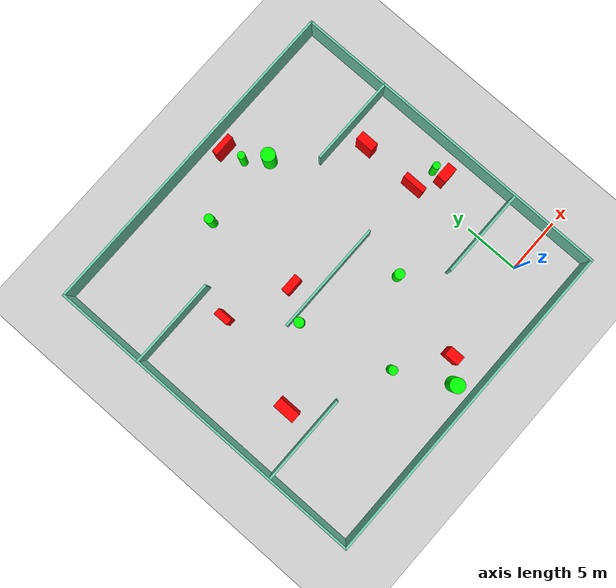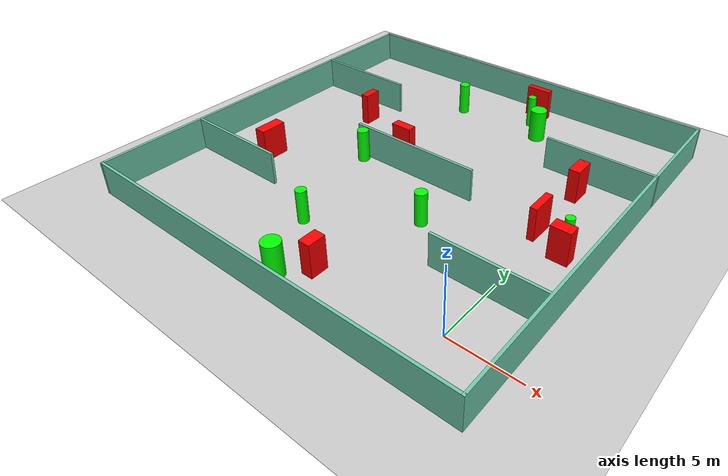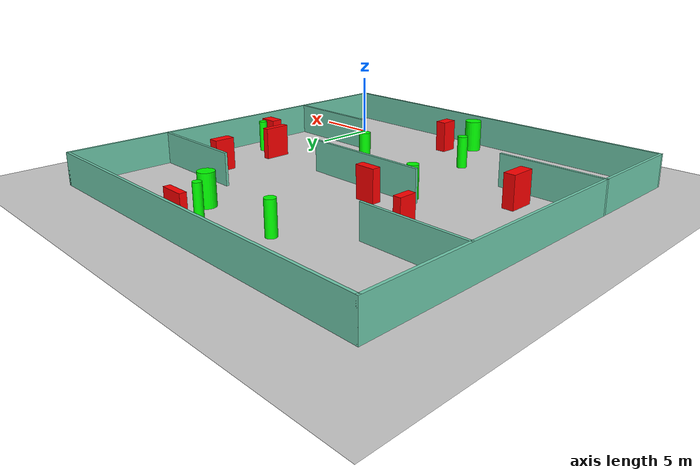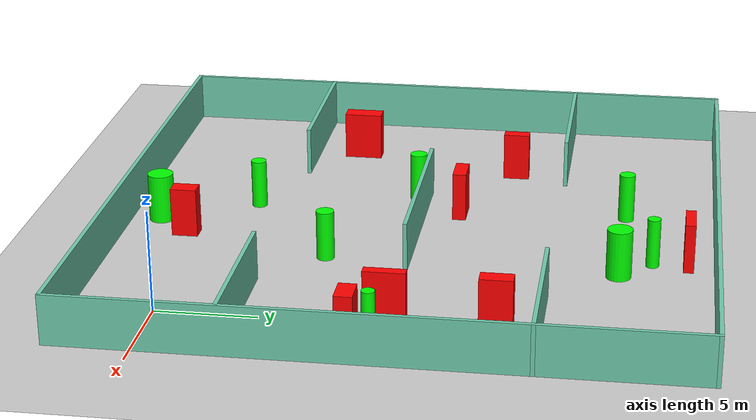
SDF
<sdf version="1.7">
 <world name="default">
  <light name="sun" type="directional">
   <pose>0 0 10 0 -0 0</pose>
   <diffuse>0.8 0.8 0.8 1</diffuse>
   <specular>0.2 0.2 0.2 1</specular>
   <attenuation>
    <range>1000</range>
    <constant>0.9</constant>
    <linear>0.01</linear>
    <quadratic>0.001</quadratic>
   </attenuation>
   <direction>-0.5 0.1 -0.9</direction>
   <spot><inner_angle>0</inner_angle><outer_angle>0</outer_angle><falloff>0</falloff></spot>
  </light>
  <model name="ground_plane">
   <static>1</static>
   <link name="link">
    <collision name="collision">
     <geometry><plane><normal>0 0 1</normal><size>100 100</size></plane></geometry>
     <surface>
      <contact><collide_bitmask>65535</collide_bitmask></contact>
      <friction><ode><mu>100</mu><mu2>50</mu2></ode></friction>
     </surface>
    </collision>
    <visual name="visual">
     <cast_shadows>0</cast_shadows>
     <geometry><plane><normal>0 0 1</normal><size>100 100</size></plane></geometry>
     <material>
      <script><uri>file://media/materials/scripts/gazebo.material</uri><name>Gazebo/Grey</name></script>
     </material>
    </visual>
   </link>
  </model>
  <gravity>0 0 -9.8</gravity>
  <magnetic_field>6e-06 2.3e-05 -4.2e-05</magnetic_field>
  <atmosphere type="adiabatic"/>
  <physics type="ode">
   <max_step_size>0.001</max_step_size>
   <real_time_factor>1</real_time_factor>
   <real_time_update_rate>1000</real_time_update_rate>
  </physics>
  <scene><ambient>0.4 0.4 0.4 1</ambient><background>0.7 0.7 0.7 1</background><shadows>1</shadows></scene>
  <spherical_coordinates>
   <surface_model>EARTH_WGS84</surface_model>
   <latitude_deg>0</latitude_deg>
   <longitude_deg>0</longitude_deg>
   <elevation>0</elevation>
   <heading_deg>0</heading_deg>
  </spherical_coordinates>
  <model name="my_base_walls">
   <link name="Wall_10">
    <collision name="Wall_10_Collision">
     <geometry><box><size>8.2 0.2 2.5</size></box></geometry>
     <pose>0 0 1.25 0 -0 0</pose>
    </collision>
    <visual name="Wall_10_Visual">
     <pose>0 0 1.25 0 -0 0</pose>
     <geometry><box><size>8.2 0.2 2.5</size></box></geometry>
     <material>
      <script><uri>file://media/materials/scripts/gazebo.material</uri><name>Gazebo/Grey</name></script>
      <ambient>0.435294 0.796078 0.67451 1</ambient>
     </material>
     <meta><layer>0</layer></meta>
    </visual>
    <pose>-11 -7 0 0 -0 0</pose>
   </link>
   <link name="Wall_12">
    <collision name="Wall_12_Collision">
     <geometry><box><size>8.2 0.2 2.5</size></box></geometry>
     <pose>0 0 1.25 0 -0 0</pose>
    </collision>
    <visual name="Wall_12_Visual">
     <pose>0 0 1.25 0 -0 0</pose>
     <geometry><box><size>8.2 0.2 2.5</size></box></geometry>
     <material>
      <script><uri>file://media/materials/scripts/gazebo.material</uri><name>Gazebo/Grey</name></script>
      <ambient>0.435294 0.796078 0.67451 1</ambient>
     </material>
     <meta><layer>0</layer></meta>
    </visual>
    <pose>-11 7 0 0 -0 0</pose>
   </link>
   <link name="Wall_14">
    <collision name="Wall_14_Collision">
     <geometry><box><size>8.2 0.2 2.5</size></box></geometry>
     <pose>0 0 1.25 0 -0 0</pose>
    </collision>
    <visual name="Wall_14_Visual">
     <pose>0 0 1.25 0 -0 0</pose>
     <geometry><box><size>8.2 0.2 2.5</size></box></geometry>
     <material>
      <script><uri>file://media/materials/scripts/gazebo.material</uri><name>Gazebo/Grey</name></script>
      <ambient>0.435294 0.796078 0.67451 1</ambient>
     </material>
     <meta><layer>0</layer></meta>
    </visual>
    <pose>11 7 0 0 -0 3.14159</pose>
   </link>
   <link name="Wall_16">
    <collision name="Wall_16_Collision">
     <geometry><box><size>10.2 0.2 2.5</size></box></geometry>
     <pose>0 0 1.25 0 -0 0</pose>
    </collision>
    <visual name="Wall_16_Visual">
     <pose>0 0 1.25 0 -0 0</pose>
     <geometry><box><size>10.2 0.2 2.5</size></box></geometry>
     <material>
      <script><uri>file://media/materials/scripts/gazebo.material</uri><name>Gazebo/Grey</name></script>
      <ambient>0.435294 0.796078 0.67451 1</ambient>
     </material>
     <meta><layer>0</layer></meta>
    </visual>
    <pose>0 0 0 0 -0 3.14159</pose>
   </link>
   <link name="Wall_2">
    <collision name="Wall_2_Collision">
     <geometry><box><size>30.2 0.2 2.5</size></box></geometry>
     <pose>0 0 1.25 0 -0 0</pose>
    </collision>
    <visual name="Wall_2_Visual">
     <pose>0 0 1.25 0 -0 0</pose>
     <geometry><box><size>30.2 0.2 2.5</size></box></geometry>
     <material>
      <script><uri>file://media/materials/scripts/gazebo.material</uri><name>Gazebo/Grey</name></script>
      <ambient>0.435294 0.796078 0.67451 1</ambient>
     </material>
     <meta><layer>0</layer></meta>
    </visual>
    <pose>0 -15 0 0 -0 3.14159</pose>
   </link>
   <link name="Wall_3">
    <collision name="Wall_3_Collision">
     <geometry><box><size>30.2 0.2 2.5</size></box></geometry>
     <pose>0 0 1.25 0 -0 0</pose>
    </collision>
    <visual name="Wall_3_Visual">
     <pose>0 0 1.25 0 -0 0</pose>
     <geometry><box><size>30.2 0.2 2.5</size></box></geometry>
     <material>
      <script><uri>file://media/materials/scripts/gazebo.material</uri><name>Gazebo/Grey</name></script>
      <ambient>0.435294 0.796078 0.67451 1</ambient>
     </material>
     <meta><layer>0</layer></meta>
    </visual>
    <pose>-15 0 0 0 -0 1.5708</pose>
   </link>
   <link name="Wall_4">
    <collision name="Wall_4_Collision">
     <geometry><box><size>30.2 0.2 2.5</size></box></geometry>
     <pose>0 0 1.25 0 -0 0</pose>
    </collision>
    <visual name="Wall_4_Visual">
     <pose>0 0 1.25 0 -0 0</pose>
     <geometry><box><size>30.2 0.2 2.5</size></box></geometry>
     <material>
      <script><uri>file://media/materials/scripts/gazebo.material</uri><name>Gazebo/Grey</name></script>
      <ambient>0.435294 0.796078 0.67451 1</ambient>
     </material>
     <meta><layer>0</layer></meta>
    </visual>
    <pose>0 15 0 0 -0 0</pose>
   </link>
   <link name="Wall_6">
    <collision name="Wall_6_Collision">
     <geometry><box><size>30.2 0.2 2.5</size></box></geometry>
     <pose>0 0 1.25 0 -0 0</pose>
    </collision>
    <visual name="Wall_6_Visual">
     <pose>0 0 1.25 0 -0 0</pose>
     <geometry><box><size>30.2 0.2 2.5</size></box></geometry>
     <material>
      <script><uri>file://media/materials/scripts/gazebo.material</uri><name>Gazebo/Grey</name></script>
      <ambient>0.435294 0.796078 0.67451 1</ambient>
     </material>
     <meta><layer>0</layer></meta>
    </visual>
    <pose>15 0 0 0 -0 1.5708</pose>
   </link>
   <link name="Wall_8">
    <collision name="Wall_8_Collision">
     <geometry><box><size>8.2 0.2 2.5</size></box></geometry>
     <pose>0 0 1.25 0 -0 0</pose>
    </collision>
    <visual name="Wall_8_Visual">
     <pose>0 0 1.25 0 -0 0</pose>
     <geometry><box><size>8.2 0.2 2.5</size></box></geometry>
     <material>
      <script><uri>file://media/materials/scripts/gazebo.material</uri><name>Gazebo/Grey</name></script>
      <ambient>0.435294 0.796078 0.67451 1</ambient>
     </material>
     <meta><layer>0</layer></meta>
    </visual>
    <pose>11 -7 0 0 -0 3.14159</pose>
   </link>
   <static>1</static>
   <pose>-11 11 0 0 -0 0</pose>
  </model>
  <model name="cylinder1">
   <static>1</static>
   <link name="link">
    <inertial>
     <mass>1</mass>
     <inertia><ixx>0.5</ixx><ixy>0</ixy><ixz>0</ixz><iyy>0.5</iyy><iyz>0</iyz><izz>1</izz></inertia>
    </inertial>
    <collision name="collision">
     <geometry><cylinder><radius>0.6205054914900434</radius><length>2.5</length></cylinder></geometry>
    </collision>
    <visual name="visual">
     <geometry><cylinder><radius>0.6205054914900434</radius><length>2.5</length></cylinder></geometry>
     <material>
      <ambient>0 1 0 1</ambient>
      <diffuse>0 1 0 1</diffuse>
      <specular>0.1 0.1 0.1 1</specular>
      <emissive>0 0 0 0</emissive>
     </material>
    </visual>
   </link>
   <pose>-6.680904764732251 21.30118466164948 1.25 0 0 0</pose>
  </model>
  <model name="cylinder2">
   <static>1</static>
   <link name="link">
    <inertial>
     <mass>1</mass>
     <inertia><ixx>0.5</ixx><ixy>0</ixy><ixz>0</ixz><iyy>0.5</iyy><iyz>0</iyz><izz>1</izz></inertia>
    </inertial>
    <collision name="collision">
     <geometry><cylinder><radius>0.32654122195376917</radius><length>2.5</length></cylinder></geometry>
    </collision>
    <visual name="visual">
     <geometry><cylinder><radius>0.32654122195376917</radius><length>2.5</length></cylinder></geometry>
     <material>
      <ambient>0 1 0 1</ambient>
      <diffuse>0 1 0 1</diffuse>
      <specular>0.1 0.1 0.1 1</specular>
      <emissive>0 0 0 0</emissive>
     </material>
    </visual>
   </link>
   <pose>-8.162706098387767 22.89473695670688 1.25 0 0 0</pose>
  </model>
  <model name="cylinder3">
   <static>1</static>
   <link name="link">
    <inertial>
     <mass>1</mass>
     <inertia><ixx>0.5</ixx><ixy>0</ixy><ixz>0</ixz><iyy>0.5</iyy><iyz>0</iyz><izz>1</izz></inertia>
    </inertial>
    <collision name="collision">
     <geometry><cylinder><radius>0.40221119003129213</radius><length>2.5</length></cylinder></geometry>
    </collision>
    <visual name="visual">
     <geometry><cylinder><radius>0.40221119003129213</radius><length>2.5</length></cylinder></geometry>
     <material>
      <ambient>0 1 0 1</ambient>
      <diffuse>0 1 0 1</diffuse>
      <specular>0.1 0.1 0.1 1</specular>
      <emissive>0 0 0 0</emissive>
     </material>
    </visual>
   </link>
   <pose>-13.752251309276843 21.406689256540965 1.25 0 0 0</pose>
  </model>
  <model name="cylinder4">
   <static>1</static>
   <link name="link">
    <inertial>
     <mass>1</mass>
     <inertia><ixx>0.5</ixx><ixy>0</ixy><ixz>0</ixz><iyy>0.5</iyy><iyz>0</iyz><izz>1</izz></inertia>
    </inertial>
    <collision name="collision">
     <geometry><cylinder><radius>0.44283006645394707</radius><length>2.5</length></cylinder></geometry>
    </collision>
    <visual name="visual">
     <geometry><cylinder><radius>0.44283006645394707</radius><length>2.5</length></cylinder></geometry>
     <material>
      <ambient>0 1 0 1</ambient>
      <diffuse>0 1 0 1</diffuse>
      <specular>0.1 0.1 0.1 1</specular>
      <emissive>0 0 0 0</emissive>
     </material>
    </visual>
   </link>
   <pose>-6.994039379233776 6.893528974663047 1.25 0 0 0</pose>
  </model>
  <model name="cylinder5">
   <static>1</static>
   <link name="link">
    <inertial>
     <mass>1</mass>
     <inertia><ixx>0.5</ixx><ixy>0</ixy><ixz>0</ixz><iyy>0.5</iyy><iyz>0</iyz><izz>1</izz></inertia>
    </inertial>
    <collision name="collision">
     <geometry><cylinder><radius>0.31973274665192936</radius><length>2.5</length></cylinder></geometry>
    </collision>
    <visual name="visual">
     <geometry><cylinder><radius>0.31973274665192936</radius><length>2.5</length></cylinder></geometry>
     <material>
      <ambient>0 1 0 1</ambient>
      <diffuse>0 1 0 1</diffuse>
      <specular>0.1 0.1 0.1 1</specular>
      <emissive>0 0 0 0</emissive>
     </material>
    </visual>
   </link>
   <pose>1.6700767471429359 10.422012105514215 1.25 0 0 0</pose>
  </model>
  <model name="cylinder6">
   <static>1</static>
   <link name="link">
    <inertial>
     <mass>1</mass>
     <inertia><ixx>0.5</ixx><ixy>0</ixy><ixz>0</ixz><iyy>0.5</iyy><iyz>0</iyz><izz>1</izz></inertia>
    </inertial>
    <collision name="collision">
     <geometry><cylinder><radius>0.43702920360430425</radius><length>2.5</length></cylinder></geometry>
    </collision>
    <visual name="visual">
     <geometry><cylinder><radius>0.43702920360430425</radius><length>2.5</length></cylinder></geometry>
     <material>
      <ambient>0 1 0 1</ambient>
      <diffuse>0 1 0 1</diffuse>
      <specular>0.1 0.1 0.1 1</specular>
      <emissive>0 0 0 0</emissive>
     </material>
    </visual>
   </link>
   <pose>-15.223350898914104 10.409308125813737 1.25 0 0 0</pose>
  </model>
  <model name="cylinder7">
   <static>1</static>
   <link name="link">
    <inertial>
     <mass>1</mass>
     <inertia><ixx>0.5</ixx><ixy>0</ixy><ixz>0</ixz><iyy>0.5</iyy><iyz>0</iyz><izz>1</izz></inertia>
    </inertial>
    <collision name="collision">
     <geometry><cylinder><radius>0.39220007882006197</radius><length>2.5</length></cylinder></geometry>
    </collision>
    <visual name="visual">
     <geometry><cylinder><radius>0.39220007882006197</radius><length>2.5</length></cylinder></geometry>
     <material>
      <ambient>0 1 0 1</ambient>
      <diffuse>0 1 0 1</diffuse>
      <specular>0.1 0.1 0.1 1</specular>
      <emissive>0 0 0 0</emissive>
     </material>
    </visual>
   </link>
   <pose>-13.150359607064265 2.263175559649893 1.25 0 0 0</pose>
  </model>
  <model name="cylinder8">
   <static>1</static>
   <link name="link">
    <inertial>
     <mass>1</mass>
     <inertia><ixx>0.5</ixx><ixy>0</ixy><ixz>0</ixz><iyy>0.5</iyy><iyz>0</iyz><izz>1</izz></inertia>
    </inertial>
    <collision name="collision">
     <geometry><cylinder><radius>0.6542164083205952</radius><length>2.5</length></cylinder></geometry>
    </collision>
    <visual name="visual">
     <geometry><cylinder><radius>0.6542164083205952</radius><length>2.5</length></cylinder></geometry>
     <material>
      <ambient>0 1 0 1</ambient>
      <diffuse>0 1 0 1</diffuse>
      <specular>0.1 0.1 0.1 1</specular>
      <emissive>0 0 0 0</emissive>
     </material>
    </visual>
   </link>
   <pose>-10.689272110358704 -2.3558582975342626 1.25 0 0 0</pose>
  </model>
  <model name="box1">
   <static>1</static>
   <link name="link">
    <inertial>
     <mass>1</mass>
     <inertia><ixx>0.083</ixx><ixy>0</ixy><ixz>0</ixz><iyy>0.083</iyy><iyz>0</iyz><izz>0.083</izz></inertia>
    </inertial>
    <collision name="collision">
     <geometry><box><size>0.6028940376354839 1.3535916978095204 2.5</size></box></geometry>
    </collision>
    <visual name="visual">
     <geometry><box><size>0.6028940376354839 1.3535916978095204 2.5</size></box></geometry>
     <material>
      <ambient>1 0 0 1</ambient>
      <diffuse>1 0 0 1</diffuse>
      <specular>0.1 0.1 0.1 1</specular>
      <emissive>0 0 0 0</emissive>
     </material>
    </visual>
    <sensor name="my_contact" type="contact">
     <contact><collision>box_collision</collision><topic>__default_topic__</topic></contact>
    </sensor>
   </link>
   <pose>-18.897869448626807 15.28587194350417 1.25 0 0 0</pose>
  </model>
  <model name="box2">
   <static>1</static>
   <link name="link">
    <inertial>
     <mass>1</mass>
     <inertia><ixx>0.083</ixx><ixy>0</ixy><ixz>0</ixz><iyy>0.083</iyy><iyz>0</iyz><izz>0.083</izz></inertia>
    </inertial>
    <collision name="collision">
     <geometry><box><size>0.8829122866623051 1.9889522816407557 2.5</size></box></geometry>
    </collision>
    <visual name="visual">
     <geometry><box><size>0.8829122866623051 1.9889522816407557 2.5</size></box></geometry>
     <material>
      <ambient>1 0 0 1</ambient>
      <diffuse>1 0 0 1</diffuse>
      <specular>0.1 0.1 0.1 1</specular>
      <emissive>0 0 0 0</emissive>
     </material>
    </visual>
    <sensor name="my_contact" type="contact">
     <contact><collision>box_collision</collision><topic>__default_topic__</topic></contact>
    </sensor>
   </link>
   <pose>-21.073674163925737 6.557755128938467 1.25 0 0 0</pose>
  </model>
  <model name="box3">
   <static>1</static>
   <link name="link">
    <inertial>
     <mass>1</mass>
     <inertia><ixx>0.083</ixx><ixy>0</ixy><ixz>0</ixz><iyy>0.083</iyy><iyz>0</iyz><izz>0.083</izz></inertia>
    </inertial>
    <collision name="collision">
     <geometry><box><size>0.5132055922327348 2.0292595710757215 2.5</size></box></geometry>
    </collision>
    <visual name="visual">
     <geometry><box><size>0.5132055922327348 2.0292595710757215 2.5</size></box></geometry>
     <material>
      <ambient>1 0 0 1</ambient>
      <diffuse>1 0 0 1</diffuse>
      <specular>0.1 0.1 0.1 1</specular>
      <emissive>0 0 0 0</emissive>
     </material>
    </visual>
    <sensor name="my_contact" type="contact">
     <contact><collision>box_collision</collision><topic>__default_topic__</topic></contact>
    </sensor>
   </link>
   <pose>-0.5343715593026168 10.825110445146663 1.25 0 0 0</pose>
  </model>
  <model name="box4">
   <static>1</static>
   <link name="link">
    <inertial>
     <mass>1</mass>
     <inertia><ixx>0.083</ixx><ixy>0</ixy><ixz>0</ixz><iyy>0.083</iyy><iyz>0</iyz><izz>0.083</izz></inertia>
    </inertial>
    <collision name="collision">
     <geometry><box><size>0.8617252119699119 1.315883876421567 2.5</size></box></geometry>
    </collision>
    <visual name="visual">
     <geometry><box><size>0.8617252119699119 1.315883876421567 2.5</size></box></geometry>
     <material>
      <ambient>1 0 0 1</ambient>
      <diffuse>1 0 0 1</diffuse>
      <specular>0.1 0.1 0.1 1</specular>
      <emissive>0 0 0 0</emissive>
     </material>
    </visual>
    <sensor name="my_contact" type="contact">
     <contact><collision>box_collision</collision><topic>__default_topic__</topic></contact>
    </sensor>
   </link>
   <pose>-9.070675266630971 -0.6642732702830179 1.25 0 0 0</pose>
  </model>
  <model name="box5">
   <static>1</static>
   <link name="link">
    <inertial>
     <mass>1</mass>
     <inertia><ixx>0.083</ixx><ixy>0</ixy><ixz>0</ixz><iyy>0.083</iyy><iyz>0</iyz><izz>0.083</izz></inertia>
    </inertial>
    <collision name="collision">
     <geometry><box><size>1.6366190640808298 0.6866114469272908 2.5</size></box></geometry>
    </collision>
    <visual name="visual">
     <geometry><box><size>1.6366190640808298 0.6866114469272908 2.5</size></box></geometry>
     <material>
      <ambient>1 0 0 1</ambient>
      <diffuse>1 0 0 1</diffuse>
      <specular>0.1 0.1 0.1 1</specular>
      <emissive>0 0 0 0</emissive>
     </material>
    </visual>
    <sensor name="my_contact" type="contact">
     <contact><collision>box_collision</collision><topic>__default_topic__</topic></contact>
    </sensor>
   </link>
   <pose>-13.354540592107579 12.865102352809227 1.25 0 0 0</pose>
  </model>
  <model name="box6">
   <static>1</static>
   <link name="link">
    <inertial>
     <mass>1</mass>
     <inertia><ixx>0.083</ixx><ixy>0</ixy><ixz>0</ixz><iyy>0.083</iyy><iyz>0</iyz><izz>0.083</izz></inertia>
    </inertial>
    <collision name="collision">
     <geometry><box><size>1.4324182334166293 0.8756416087585285 2.5</size></box></geometry>
    </collision>
    <visual name="visual">
     <geometry><box><size>1.4324182334166293 0.8756416087585285 2.5</size></box></geometry>
     <material>
      <ambient>1 0 0 1</ambient>
      <diffuse>1 0 0 1</diffuse>
      <specular>0.1 0.1 0.1 1</specular>
      <emissive>0 0 0 0</emissive>
     </material>
    </visual>
    <sensor name="my_contact" type="contact">
     <contact><collision>box_collision</collision><topic>__default_topic__</topic></contact>
    </sensor>
   </link>
   <pose>1.766813937410884 9.410370718757694 1.25 0 0 0</pose>
  </model>
  <model name="box7">
   <static>1</static>
   <link name="link">
    <inertial>
     <mass>1</mass>
     <inertia><ixx>0.083</ixx><ixy>0</ixy><ixz>0</ixz><iyy>0.083</iyy><iyz>0</iyz><izz>0.083</izz></inertia>
    </inertial>
    <collision name="collision">
     <geometry><box><size>0.8036518579792147 1.593436817281833 2.5</size></box></geometry>
    </collision>
    <visual name="visual">
     <geometry><box><size>0.8036518579792147 1.593436817281833 2.5</size></box></geometry>
     <material>
      <ambient>1 0 0 1</ambient>
      <diffuse>1 0 0 1</diffuse>
      <specular>0.1 0.1 0.1 1</specular>
      <emissive>0 0 0 0</emissive>
     </material>
    </visual>
    <sensor name="my_contact" type="contact">
     <contact><collision>box_collision</collision><topic>__default_topic__</topic></contact>
    </sensor>
   </link>
   <pose>-0.5359063402828887 15.974197276831713 1.25 0 0 0</pose>
  </model>
  <model name="box8">
   <static>1</static>
   <link name="link">
    <inertial>
     <mass>1</mass>
     <inertia><ixx>0.083</ixx><ixy>0</ixy><ixz>0</ixz><iyy>0.083</iyy><iyz>0</iyz><izz>0.083</izz></inertia>
    </inertial>
    <collision name="collision">
     <geometry><box><size>1.917702210919649 0.5046966820564582 2.5</size></box></geometry>
    </collision>
    <visual name="visual">
     <geometry><box><size>1.917702210919649 0.5046966820564582 2.5</size></box></geometry>
     <material>
      <ambient>1 0 0 1</ambient>
      <diffuse>1 0 0 1</diffuse>
      <specular>0.1 0.1 0.1 1</specular>
      <emissive>0 0 0 0</emissive>
     </material>
    </visual>
    <sensor name="my_contact" type="contact">
     <contact><collision>box_collision</collision><topic>__default_topic__</topic></contact>
    </sensor>
   </link>
   <pose>-8.491374422586114 24.655092251699678 1.25 0 0 0</pose>
  </model>
 </world>
</sdf>
